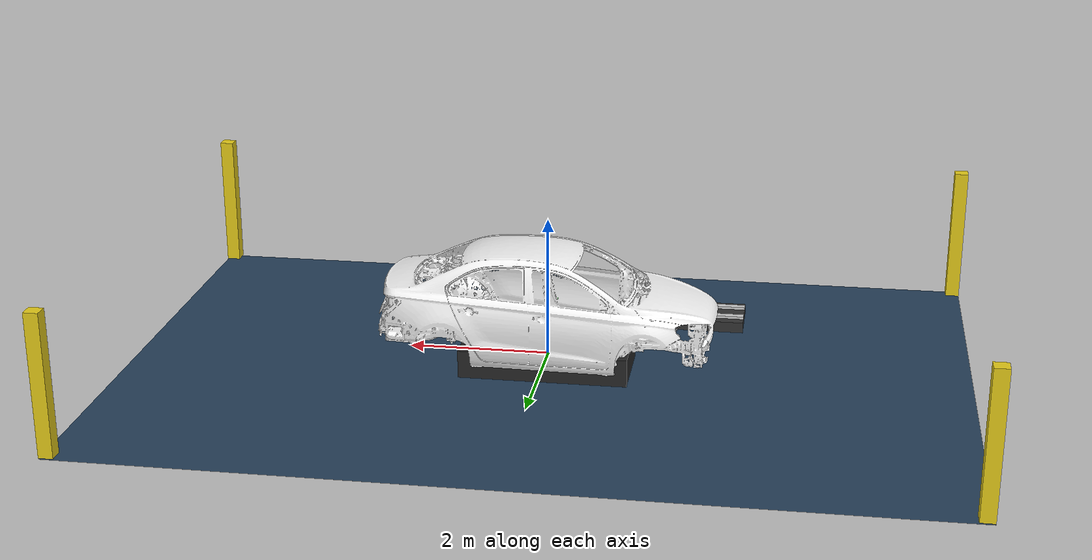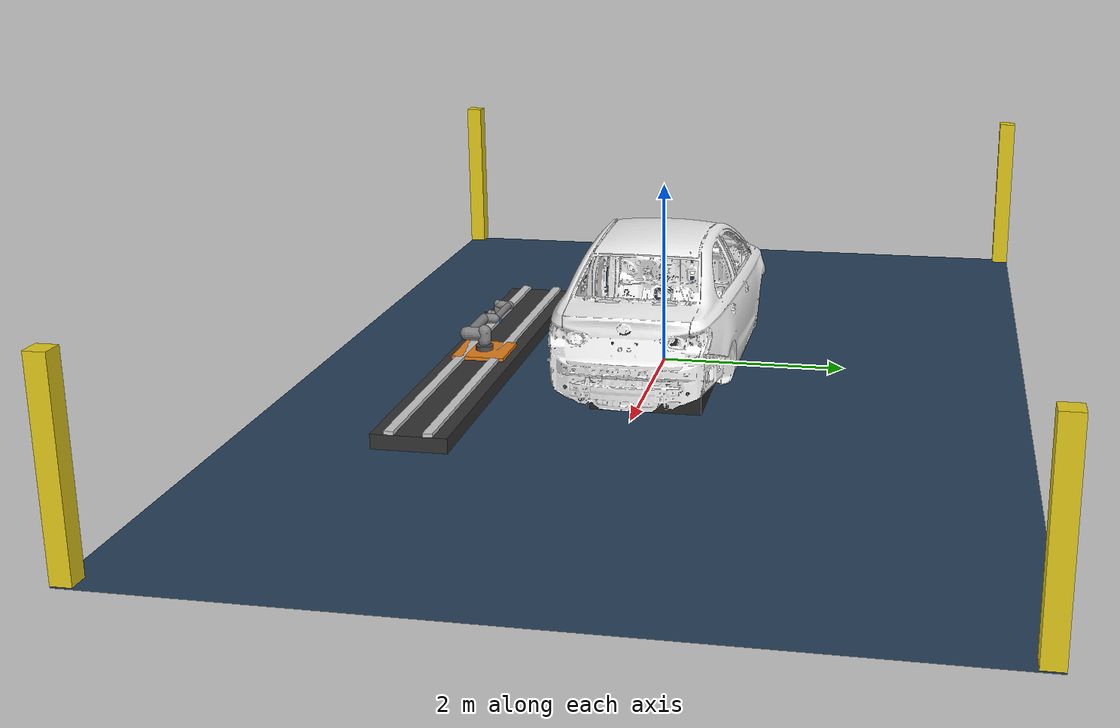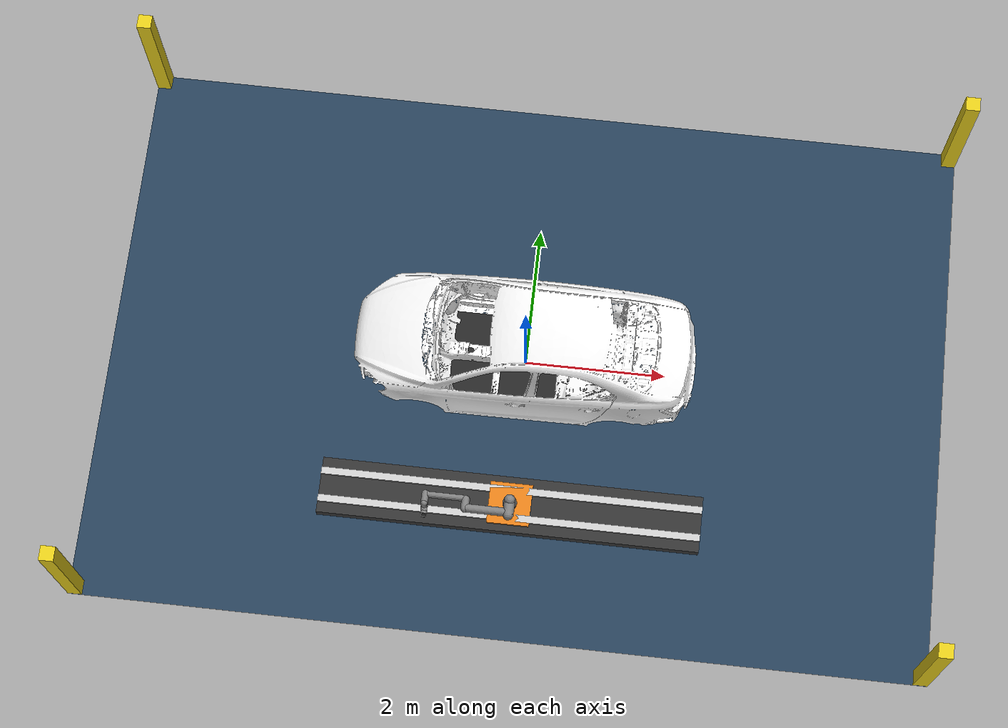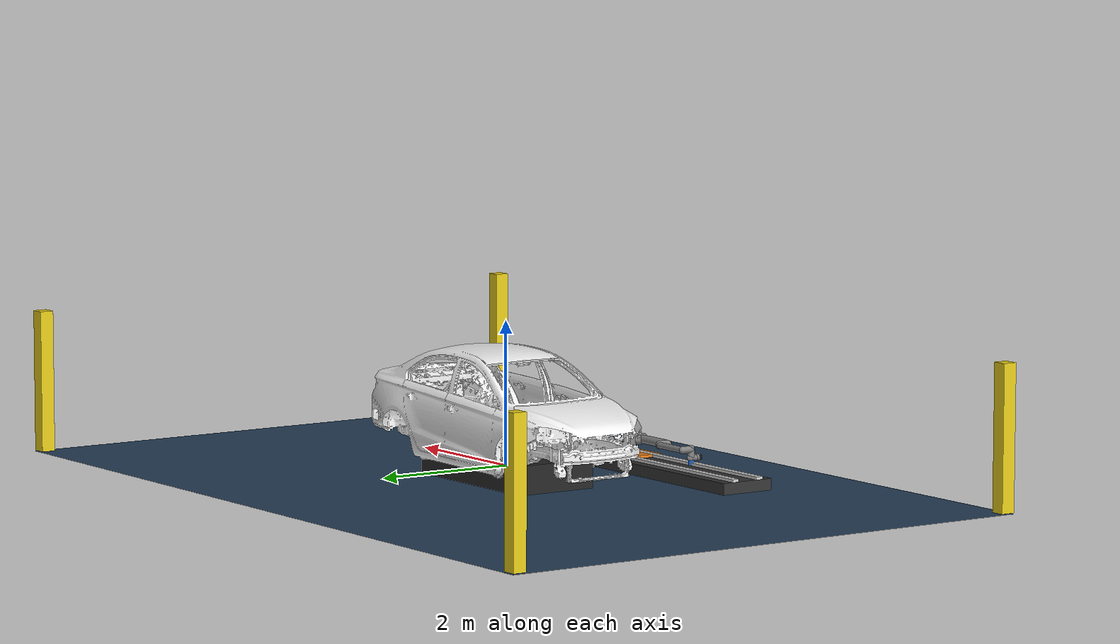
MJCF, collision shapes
<mujoco>
    <compiler angle="radian" meshdir="." />

    <asset>
        <!-- Exact Scale for 4.8m x 1.9m x 1.6m based on STL bounds -->
        <mesh name="car_mesh" file="../assets/car/car_body.stl" scale="0.0010565 0.001071 0.001209" />
        <texture type="skybox" builtin="gradient" rgb1="0.3 0.5 0.7" rgb2="0 0 0" width="512" height="512"/>
        <texture type="2d" name="texplane" builtin="checker" mark="edge" rgb1="0.2 0.3 0.4" rgb2="0.1 0.2 0.3" markrgb="0.8 0.8 0.8" width="512" height="512"/>
        <material name="matfloor" texture="texplane" texuniform="true" texrepeat="5 5" reflectance="0.2"/>
    </asset>

    <visual>
        <map force="0.1" zfar="30"/>
        <rgba haze="0.15 0.25 0.35 1"/>
        <quality shadowsize="4096"/>
        <global offwidth="1024" offheight="1024"/>
    </visual>

    <!-- Include Robot on Rail -->
    <include file="ur10e_rail.xml"/>

    <worldbody>
        <light pos="0 0 5" dir="0 0 -1" directional="true" castshadow="true" diffuse="0.8 0.8 0.8" specular="0.2 0.2 0.2"/>
        <light pos="0 3 4" dir="0 -1 -1" directional="true" castshadow="false" diffuse="0.4 0.4 0.4"/>
        <light pos="0 -3 4" dir="0 1 -1" directional="true" castshadow="false" diffuse="0.4 0.4 0.4"/>

        <!-- The Car Body (White BIW) -->
        <body name="car" pos="-1.452 0 0.2">
            <geom type="mesh" mesh="car_mesh" rgba="0.95 0.95 0.95 1"/>
        </body>
    </worldbody>

    <!-- Include Cell Layout (Floor, Rail visuals, Pedestals) -->
    <include file="cell_layout.xml"/>
</mujoco>

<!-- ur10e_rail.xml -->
<mujoco model="ur10e">
  <compiler angle="radian"  autolimits="true" />

  <option integrator="implicitfast" />

  <default>
    <default class="ur10e">
      <material specular="0.5" shininess="0.25" />
      <joint axis="0 1 0" range="-6.28319 6.28319" armature="0.1" />
      <position ctrlrange="-6.2831 6.2831" />
      <general biastype="affine" ctrlrange="-6.2831 6.2831" gainprm="5000" biasprm="0 -5000 -500" />
      <default class="size4">
        <joint damping="10" />
        <general forcerange="-330 330" />
      </default>
      <default class="size3">
        <joint damping="5" />
        <general forcerange="-150 150" />
        <default class="size3_limited">
          <joint range="-3.1415 3.1415" />
          <general ctrlrange="-3.1415 3.1415" />
        </default>
      </default>
      <default class="size2">
        <joint damping="2" />
        <general forcerange="-56 56" />
      </default>
      <default class="visual">
        <geom type="mesh" contype="0" conaffinity="0" group="2" />
      </default>
      <default class="collision">
        <geom type="capsule" group="3" />
        <default class="eef_collision">
          <geom type="cylinder" />
        </default>
      </default>
      <site size="0.001" rgba="0.5 0.5 0.5 0.3" group="4" />
    </default>
  </default>

  <asset>
    <material class="ur10e" name="black" rgba="0.033 0.033 0.033 1" />
    <material class="ur10e" name="jointgray" rgba="0.278 0.278 0.278 1" />
    <material class="ur10e" name="linkgray" rgba="0.82 0.82 0.82 1" />
    <material class="ur10e" name="urblue" rgba="0.49 0.678 0.8 1" />

    <mesh file="../assets/robot/ur10e/assets/base_0.obj" />
    <mesh file="../assets/robot/ur10e/assets/base_1.obj" />
    <mesh file="../assets/robot/ur10e/assets/shoulder_0.obj" />
    <mesh file="../assets/robot/ur10e/assets/shoulder_1.obj" />
    <mesh file="../assets/robot/ur10e/assets/shoulder_2.obj" />
    <mesh file="../assets/robot/ur10e/assets/upperarm_0.obj" />
    <mesh file="../assets/robot/ur10e/assets/upperarm_1.obj" />
    <mesh file="../assets/robot/ur10e/assets/upperarm_2.obj" />
    <mesh file="../assets/robot/ur10e/assets/upperarm_3.obj" />
    <mesh file="../assets/robot/ur10e/assets/forearm_0.obj" />
    <mesh file="../assets/robot/ur10e/assets/forearm_1.obj" />
    <mesh file="../assets/robot/ur10e/assets/forearm_2.obj" />
    <mesh file="../assets/robot/ur10e/assets/forearm_3.obj" />
    <mesh file="../assets/robot/ur10e/assets/wrist1_0.obj" />
    <mesh file="../assets/robot/ur10e/assets/wrist1_1.obj" />
    <mesh file="../assets/robot/ur10e/assets/wrist1_2.obj" />
    <mesh file="../assets/robot/ur10e/assets/wrist2_0.obj" />
    <mesh file="../assets/robot/ur10e/assets/wrist2_1.obj" />
    <mesh file="../assets/robot/ur10e/assets/wrist2_2.obj" />
    <mesh file="../assets/robot/ur10e/assets/wrist3.obj" />
  </asset>

  <worldbody>
    <light name="spotlight" mode="targetbodycom" target="wrist_2_link" pos="0 -1 2" />
    <body name="base" quat="0 0 0 -1" pos="0 -2.1 0" childclass="ur10e">
      <joint name="rail_slider" type="slide" axis="1 0 0" range="-2.7 2.7" damping="50"/>
      <!-- Robot Pedestal/Slider Carriage (Moves with robot) -->
      <geom name="robot_carriage" type="box" size="0.3 0.3 0.05" pos="0 0 -0.05" rgba="0.9 0.5 0.1 1" contype="0" conaffinity="0"/>
      <geom name="robot_pedestal" type="cylinder" size="0.1 0.05" pos="0 0 0" rgba="0.3 0.3 0.3 1" contype="0" conaffinity="0"/>
      <inertial mass="4.0" pos="0 0 0" diaginertia="0.0061063308908 0.0061063308908 0.01125" />
      <geom mesh="base_0" material="black" class="visual" />
      <geom mesh="base_1" material="jointgray" class="visual" />
      <body name="shoulder_link" pos="0 0 0.181">
        <inertial pos="0 0 0" mass="7.778" diaginertia="0.0314743 0.0314743 0.0218756" />
        <joint name="shoulder_pan_joint" class="size4" axis="0 0 1" />
        <geom mesh="shoulder_0" material="urblue" class="visual" />
        <geom mesh="shoulder_1" material="black" class="visual" />
        <geom mesh="shoulder_2" material="jointgray" class="visual" />
        <geom class="collision" size="0.078 0.05" pos="0 0 -0.02" />
        <body name="upper_arm_link" pos="0 0.176 0" quat="1 0 1 0">
          <inertial pos="0 0 0.3065" mass="12.93" diaginertia="0.423074 0.423074 0.0363656" />
          <joint name="shoulder_lift_joint" class="size4" />
          <geom mesh="upperarm_0" material="black" class="visual" />
          <geom mesh="upperarm_1" material="jointgray" class="visual" />
          <geom mesh="upperarm_2" material="urblue" class="visual" />
          <geom mesh="upperarm_3" material="linkgray" class="visual" />
          <geom class="collision" pos="0 -0.05 0" quat="1 1 0 0" size="0.078 0.08" />
          <geom class="collision" size="0.06 0.3" pos="0 0 0.3" />
          <body name="forearm_link" pos="0 -0.137 0.613">
            <inertial pos="0 0 0.2855" mass="3.87" diaginertia="0.11059 0.11059 0.0108844" />
            <joint name="elbow_joint" class="size3_limited" />
            <geom mesh="forearm_0" material="urblue" class="visual" />
            <geom mesh="forearm_1" material="black" class="visual" />
            <geom mesh="forearm_2" material="jointgray" class="visual" />
            <geom mesh="forearm_3" material="linkgray" class="visual" />
            <geom class="collision" pos="0 0.08 0" quat="1 1 0 0" size="0.058 0.065" />
            <geom class="collision" size="0.043 0.28" pos="0 0 0.29" />
            <body name="wrist_1_link" pos="0 0 0.571" quat="1 0 1 0">
              <inertial pos="0 0.135 0" quat="0.5 0.5 -0.5 0.5" mass="1.96" diaginertia="0.0055125 0.00510825 0.00510825" />
              <joint name="wrist_1_joint" class="size2" />
              <geom mesh="wrist1_0" material="black" class="visual" />
              <geom mesh="wrist1_1" material="urblue" class="visual" />
              <geom mesh="wrist1_2" material="jointgray" class="visual" />
              <geom class="collision" pos="0 0.06 0" quat="1 1 0 0" size="0.05 0.07" />
              <body name="wrist_2_link" pos="0 0.135 0">
                <inertial pos="0 0 0.12" quat="0.5 0.5 -0.5 0.5" mass="1.96" diaginertia="0.0055125 0.00510825 0.00510825" />
                <joint name="wrist_2_joint" axis="0 0 1" class="size2" />
                <geom mesh="wrist2_0" material="black" class="visual" />
                <geom mesh="wrist2_1" material="urblue" class="visual" />
                <geom mesh="wrist2_2" material="jointgray" class="visual" />
                <geom class="collision" size="0.046 0.065" pos="0 0 0.05" />
                <geom class="collision" pos="0 0.028 0.12" quat="1 1 0 0" size="0.046 0.043" />
                <body name="wrist_3_link" pos="0 0 0.12">
                  <inertial pos="0 0.092 0" quat="0 1 -1 0" mass="0.202" diaginertia="0.000204525 0.000144346 0.000144346" />
                  <joint name="wrist_3_joint" class="size2" />
                  <geom material="linkgray" mesh="wrist3" class="visual" />
                  <geom class="eef_collision" pos="0 0.097 0" quat="1 1 0 0" size="0.046 0.02" />
                  <site name="attachment_site" pos="0 0.1 0" quat="-1 1 0 0" />
                <body name="painting_tool" pos="0 0.1 0" euler="1.5707 0 0">
                  <!-- Tool Mount / Handle -->
                  <geom type="cylinder" size="0.035 0.06" rgba="0.1 0.1 0.1 1" />
                  <!-- Spray Gun Main Body -->
                  <geom type="capsule" size="0.04 0.1" pos="0 0.04 0.1" euler="1.5707 0 0" rgba="0.1 0.4 0.8 1" />
                  <!-- Spray Nozzle -->
                  <geom type="cylinder" size="0.01 0.04" pos="0 0.16 0.1" euler="1.5707 0 0" rgba="0.8 0.8 0.8 1" />
                  <!-- TCP (Tool Center Point) exactly at the nozzle tip -->
                  <site name="tcp" pos="0 0.2 0.1" rgba="1 0 0 1" size="0.01" />
                </body></body>
              </body>
            </body>
          </body>
        </body>
      </body>
    </body>
  </worldbody>

  <actuator>
    <position name="rail_motor" joint="rail_slider" ctrlrange="-2.7 2.7" kp="100000"/>
    <general class="size4" name="shoulder_pan" joint="shoulder_pan_joint" />
    <general class="size4" name="shoulder_lift" joint="shoulder_lift_joint" />
    <general class="size3_limited" name="elbow" joint="elbow_joint" />
    <general class="size2" name="wrist_1" joint="wrist_1_joint" />
    <general class="size2" name="wrist_2" joint="wrist_2_joint" />
    <general class="size2" name="wrist_3" joint="wrist_3_joint" />
  </actuator>

  <keyframe>
    <key name="home" qpos="0 -1.5708 -1.5708 1.5708 -1.5708 -1.5708 0" ctrl="0 -1.5708 -1.5708 1.5708 -1.5708 -1.5708 0" />
  </keyframe>
</mujoco>

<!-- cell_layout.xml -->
<mujoco>
    <worldbody>
        <!-- Industrial Solid Floor (Lowered by 0.2m so the robot base is above it) -->
        <geom name="floor" type="plane" size="6 4 0.1" pos="0 0 -0.2" material="matfloor"/>

        <!-- 12m x 8m Footprint Visual Boundary Posts -->
        <geom name="post_nw" type="box" size="0.1 0.1 1.0" pos="-5.9  3.9 0.8" rgba="0.9 0.8 0.1 1"/>
        <geom name="post_ne" type="box" size="0.1 0.1 1.0" pos=" 5.9  3.9 0.8" rgba="0.9 0.8 0.1 1"/>
        <geom name="post_sw" type="box" size="0.1 0.1 1.0" pos="-5.9 -3.9 0.8" rgba="0.9 0.8 0.1 1"/>
        <geom name="post_se" type="box" size="0.1 0.1 1.0" pos=" 5.9 -3.9 0.8" rgba="0.9 0.8 0.1 1"/>

        <!-- Linear Rail System for Robot
             Centered at X=0, shifted to Y=-2.1 to provide a 1.2m gap from the side of the car -->
        <geom name="rail_bed" type="box" size="2.7 0.4 0.08" pos="0 -2.1 -0.12" rgba="0.2 0.2 0.2 1" contype="0" conaffinity="0"/>
        <geom name="rail_guide1" type="box" size="2.7 0.05 0.02" pos="0 -1.9 -0.02" rgba="0.8 0.8 0.8 1" contype="0" conaffinity="0"/>
        <geom name="rail_guide2" type="box" size="2.7 0.05 0.02" pos="0 -2.3 -0.02" rgba="0.8 0.8 0.8 1" contype="0" conaffinity="0"/>

        <!-- Car Support Wedge / AGV
             Centered perfectly under the physical car (X=0, Y=0) -->
        <geom name="car_support" type="box" size="1.2 0.6 0.2" pos="0 0 0.0" rgba="0.15 0.15 0.15 1"/>

        <!-- Target Spray Standoff visualization site (250mm) -->
        <site name="standoff_target" pos="0 -0.9 0.5" size="0.02" rgba="0 1 0 0.5"/>
    </worldbody>
</mujoco>
